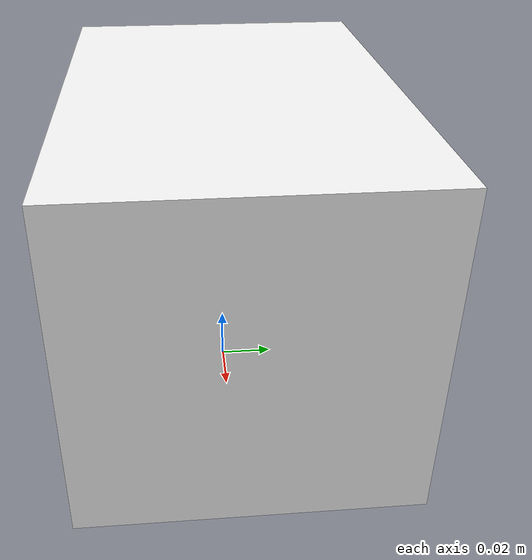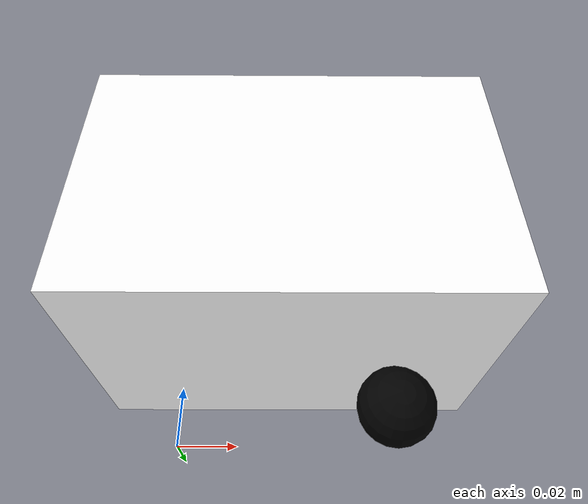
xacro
<robot xmlns:xacro="http://www.ros.org/wiki/xacro">

    <xacro:include filename="macros.xacro"/>
    <!-- Get wheel constants -->
     <xacro:include filename="wheels.xacro"/>

    <!-- Chassis constants -->
    <xacro:property name="CHASSIS_LENGTH" value="0.15"/>  <!-- Along x axis -->
    <xacro:property name="CHASSIS_WIDTH" value="0.10"/>  <!-- Along y axis -->
    <xacro:property name="CHASSIS_HEIGHT" value="0.10"/>  <!-- Along z axis -->
    <xacro:property name="CHASSIS_MASS" value="4.75"/>
    <!-- Caster constants (JOINT_Y left out because the joint is centered along chassis width) -->
    <xacro:property name="CASTER_RADIUS" value="0.014"/>
    <xacro:property name="CASTER_JOINT_X" value="${CHASSIS_LENGTH / 4}"/>
    <xacro:property name="CASTER_JOINT_Z" value="${-CHASSIS_HEIGHT / 2 - (DRIVEN_WHEEL_RADIUS - CASTER_RADIUS)}"/> <!-- Caster will touch the ground and leave a gap from the chassis -->
    <xacro:property name="CASTER_MASS" value="0.05"/>

    <link name="base_link"/>

    <!-- Main body of the robot -->
    <link name="chassis_link">
        <xacro:box_inertial length="${CHASSIS_LENGTH}" width="${CHASSIS_WIDTH}" height="${CHASSIS_HEIGHT}" mass="${CHASSIS_MASS}"/>
        <visual>
            <origin xyz="0 0 0" rpy="0 0 0"/>
            <geometry>
                <box size="${CHASSIS_LENGTH} ${CHASSIS_WIDTH} ${CHASSIS_HEIGHT}"/>
            </geometry>
            <material name="white">
                <color rgba="1.0 1.0 1.0 1.0"/>
            </material>
        </visual>
        <collision>
            <origin xyz="0 0 0" rpy="0 0 0"/>
            <geometry>
                <box size="${CHASSIS_LENGTH} ${CHASSIS_WIDTH} ${CHASSIS_HEIGHT}"/>
            </geometry>
        </collision>
    </link>

    <joint name="base_to_chassis_joint" type="fixed">
        <parent link="base_link"/>
        <child link="chassis_link"/>
        <origin xyz="${CHASSIS_LENGTH / 4} 0 ${CHASSIS_HEIGHT / 2 + DRIVEN_WHEEL_RADIUS}" rpy="0 0 0"/>
    </joint>

    <link name="caster_link">
        <xacro:sphere_inertial radius="${CASTER_RADIUS}" mass="${CASTER_MASS}"/>
        <visual>
            <origin xyz="0 0 0" rpy="0 0 0"/>
            <geometry>
                <sphere radius="${CASTER_RADIUS}"/>
            </geometry>
            <material name="black">
                <color rgba="0 0 0 1.0"/>
            </material>
        </visual>
        <collision>
            <origin xyz="0 0 0" rpy="0 0 0"/>
            <geometry>
                <sphere radius="${CASTER_RADIUS}"/>
            </geometry>
        </collision>
    </link>

    <joint name="chassis_to_caster_joint" type="fixed">
        <parent link="chassis_link"/>
        <child link="caster_link"/>
        <origin xyz="${CASTER_JOINT_X} 0 ${CASTER_JOINT_Z}" rpy="${-math.pi / 2} 0 0"/>
    </joint>

</robot>

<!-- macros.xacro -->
<robot xmlns:xacro="http://www.ros.org/wiki/xacro">

    <!-- Cylinder inertial tag with mass and moment of intertia matrix -->
    <xacro:macro name="cylinder_inertial" params="radius length mass">
        <inertial>
            <mass value="${mass}"/>
            <inertia
                ixx="${(mass * (3 * radius**2 + length**2)) / 12}" ixy="0" ixz="0"
                iyy="${(mass * (3 * radius**2 + length**2)) / 12}" iyz="0"
                izz="${(mass * radius**2) / 2}"
            />
        </inertial>
    </xacro:macro>

    <!-- Cuboid inertial tag with mass and moment of intertia matrix -->
    <xacro:macro name="box_inertial" params="length width height mass">
        <inertial>
            <mass value="${mass}"/>
            <inertia
                ixx="${(mass * (width**2 + height**2)) / 12}" ixy="0" ixz="0"
                iyy="${(mass * (length**2 + height**2)) / 12}" iyz="0"
                izz="${(mass * (length**2 + width**2)) / 12}"
            />
        </inertial>
    </xacro:macro>

    <!-- Sphere inertial tag with mass and moment of intertia matrix -->
    <xacro:macro name="sphere_inertial" params="radius mass">
        <inertial>
            <mass value="${mass}"/>
            <inertia
                ixx="${(2 / 5) * mass * radius**2}" ixy="0" ixz="0"
                iyy="${(2 / 5) * mass * radius**2}" iyz="0"
                izz="${(2 / 5) * mass * radius**2}"
            />
        </inertial>
    </xacro:macro>

</robot>

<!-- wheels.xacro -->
<robot xmlns:xacro="http://www.ros.org/wiki/xacro">

    <xacro:include filename="physics.xacro"/>
    <xacro:include filename="macros.xacro"/>

    <!-- Driven wheel constants with offset from chassis included in each joint origin -->
    <xacro:property name="DRIVEN_WHEEL_RADIUS" value="0.03"/>
    <xacro:property name="DRIVEN_WHEEL_WIDTH" value="0.015"/>
    <xacro:property name="DRIVEN_WHEEL_OFFSET" value="0.01"/>
    <xacro:property name="DRIVEN_WHEEL_JOINT_X" value="${-CHASSIS_LENGTH / 4}"/>
    <xacro:property name="DRIVEN_WHEEL_JOINT_Y_ABS" value="${CHASSIS_WIDTH / 2 + DRIVEN_WHEEL_OFFSET}"/>  <!-- Use as +ve for LHS and -ve for RHS -->
    <xacro:property name="DRIVEN_WHEEL_JOINT_Z" value="${-CHASSIS_HEIGHT / 2}"/>
    <xacro:property name="DRIVEN_WHEEL_MASS" value="0.1"/>

    <xacro:macro name="driven_wheel" params="prefix use_control">

        <xacro:if value="${prefix == 'left'}">
            <xacro:property name="sign" value="1"/>
        </xacro:if>
        <xacro:if value="${prefix == 'right'}">
            <xacro:property name="sign" value="-1"/>
        </xacro:if>

        <xacro:property name="joint_y" value="${sign * DRIVEN_WHEEL_JOINT_Y_ABS}"/>
        <xacro:property name="joint_roll" value="${-math.pi / 2}"/>  <!-- Orient the wheel correctly for differential drive kinematics -->

        <!-- Driven wheel -->
        <link name="${prefix}_wheel_link">
            <xacro:cylinder_inertial radius="${DRIVEN_WHEEL_RADIUS}" length="${DRIVEN_WHEEL_WIDTH}" mass="${DRIVEN_WHEEL_MASS}"/>
            <visual>
                <origin xyz="0 0 0" rpy="0 0 0"/>
                <geometry>
                    <cylinder length="${DRIVEN_WHEEL_WIDTH}" radius="${DRIVEN_WHEEL_RADIUS}"/>
                </geometry>
                <material name="black">
                    <color rgba="0 0 0 1.0"/>
                </material>
            </visual>
            <collision>
                <origin xyz="0 0 0" rpy="0 0 0"/>
                <geometry>
                    <cylinder length="${DRIVEN_WHEEL_WIDTH}" radius="${DRIVEN_WHEEL_RADIUS}"/>
                </geometry>
            </collision>
        </link>

        <!-- Join chassis to wheel with an offset to account for DC rotor -->
        <joint name="chassis_to_${prefix}_wheel_joint" type="continuous">
            <parent link="chassis_link"/>
            <child link="${prefix}_wheel_link"/>
            <origin xyz="${DRIVEN_WHEEL_JOINT_X} ${joint_y} ${DRIVEN_WHEEL_JOINT_Z}" rpy="${joint_roll} 0 0"/>
            <axis xyz="0 0 1"/>
            <limit effort="${MOTOR_MAX_TORQUE}" velocity="${MAX_LINEAR_VELOCITY / DRIVEN_WHEEL_RADIUS}"/>
        </joint>

        <xacro:if value="${use_control}">
            <!-- Transmission for control -->
            <transmission name="${prefix}_wheel_trans">
                <type>transmission_interface/SimpleTransmission</type>
                <joint name="chassis_to_${prefix}_wheel_joint"/>
                <actuator name="${prefix}_motor">
                    <mechanicalReduction>1</mechanicalReduction>
                </actuator>
            </transmission>
        </xacro:if>

    </xacro:macro>

</robot>
